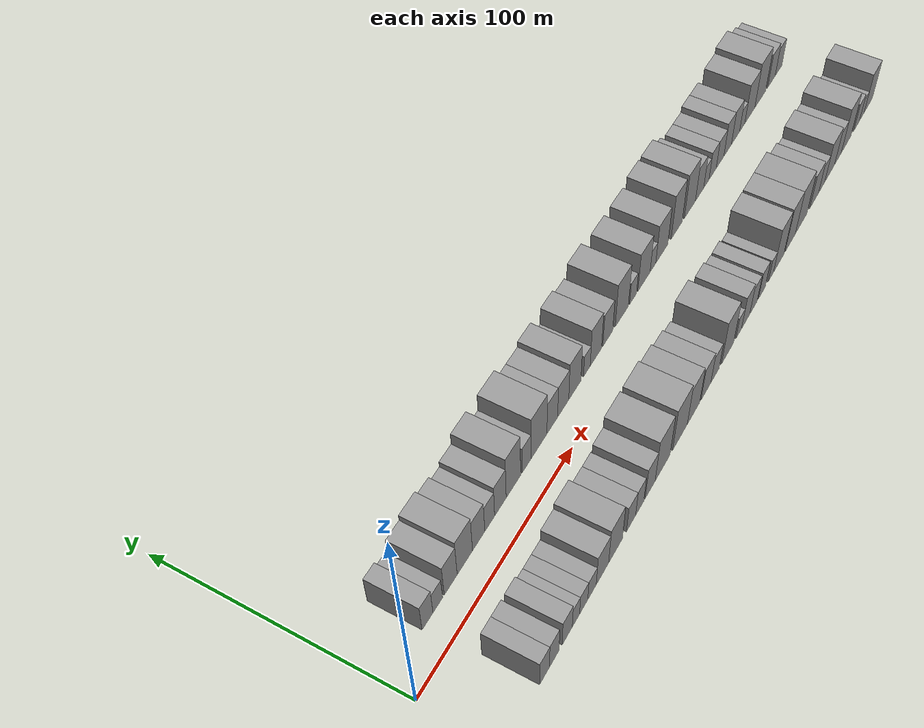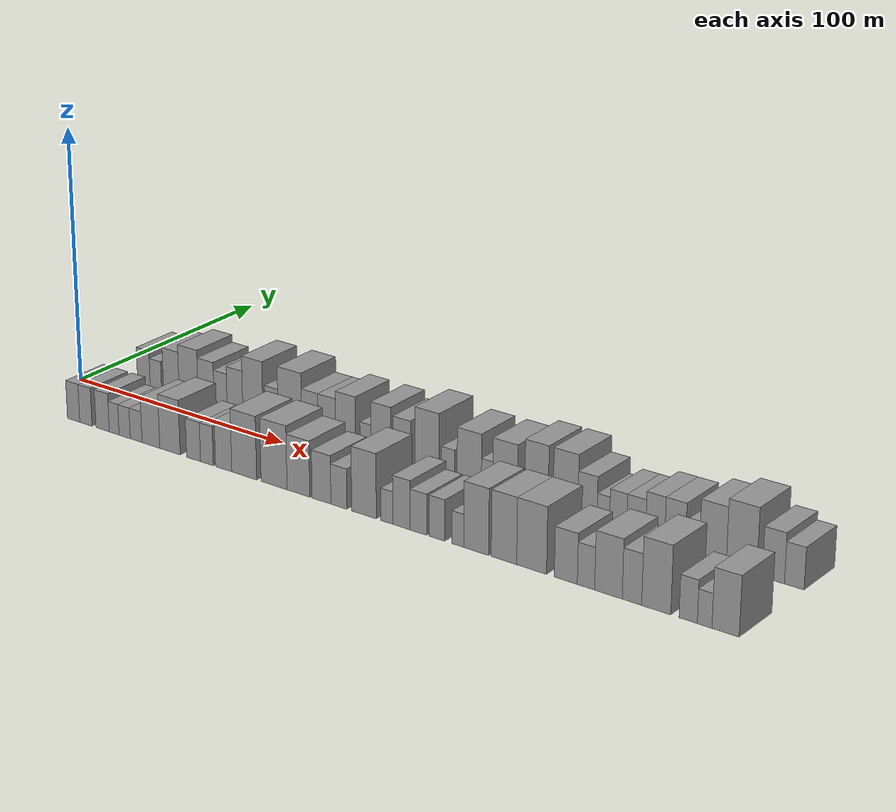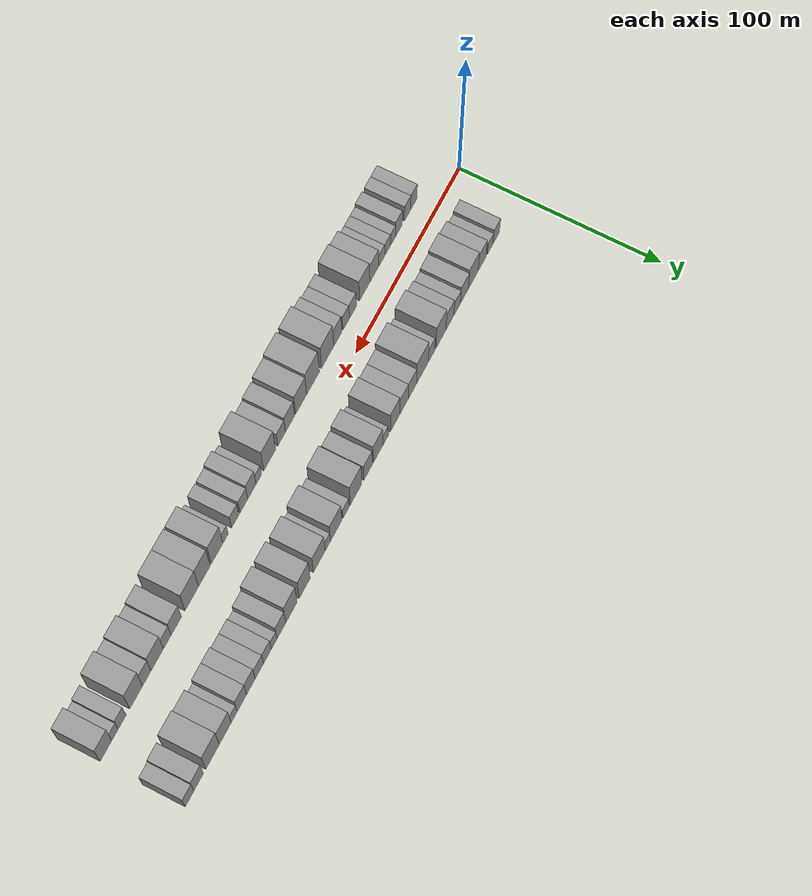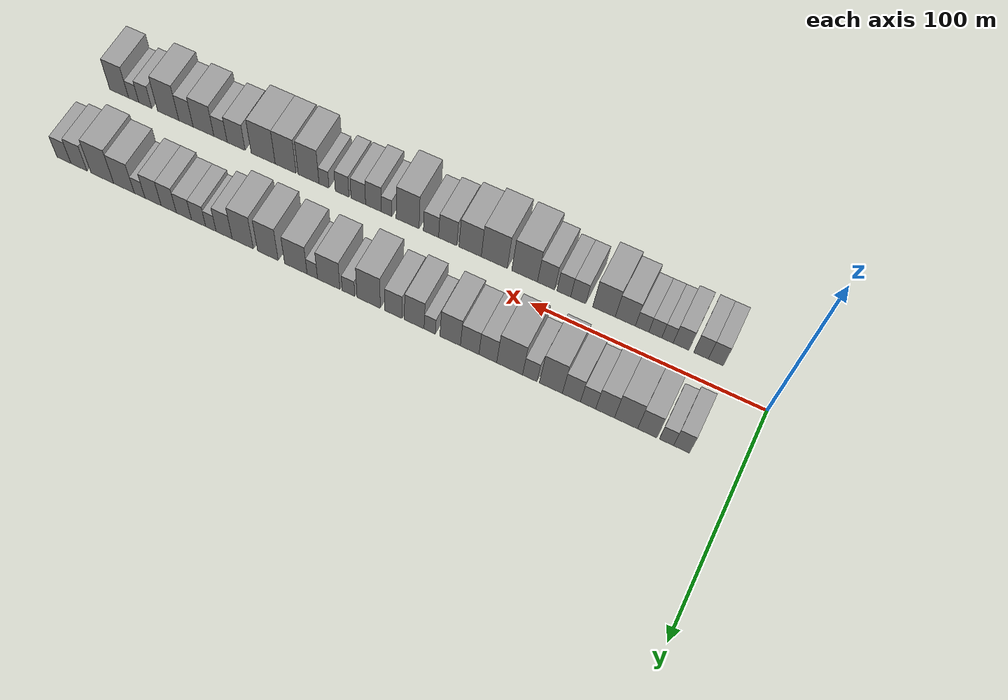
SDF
<sdf version="1.6">
 <world name="default">
  <scene>
   <sky><clouds><speed>12</speed></clouds></sky>
   <ambient>0.4 0.4 0.4 1</ambient>
   <background>0.7 0.7 0.7 1</background>
   <shadows>1</shadows>
  </scene>
  <gravity>0 0 -9.8066</gravity>
  <magnetic_field>6e-06 2.3e-05 -4.2e-05</magnetic_field>
  <physics default="0" name="default_physics" type="ode">
   <ode>
    <solver>
     <type>quick</type>
     <iters>10</iters>
     <sor>1.0</sor>
     <use_dynamic_moi_rescaling>0</use_dynamic_moi_rescaling>
    </solver>
    <constraints>
     <cfm>0</cfm>
     <erp>0.2</erp>
     <contact_max_correcting_vel>100</contact_max_correcting_vel>
     <contact_surface_layer>0.001</contact_surface_layer>
    </constraints>
   </ode>
   <max_step_size>0.004</max_step_size>
   <real_time_factor>1</real_time_factor>
   <real_time_update_rate>250</real_time_update_rate>
  </physics>
  <light name="sun" type="directional">
   <pose>0 0 10 0 0 0</pose>
   <diffuse>0.8 0.8 0.8 1</diffuse>
   <specular>0.2 0.2 0.2 1</specular>
   <attenuation>
    <range>1000</range>
    <constant>0.9</constant>
    <linear>0.01</linear>
    <quadratic>0.001</quadratic>
   </attenuation>
   <direction>-0.5 0.1 -0.9</direction>
  </light>
  <model name="building_1">
   <static>1</static>
   <pose>23.2118 20.0000 0 0.000000 0.000000 1.570796</pose>
   <link name="link">
    <pose>0 0 7.50 0 0 0</pose>
    <collision name="collision"><geometry><box><size>20.0000 6.4236 15.0000</size></box></geometry></collision>
    <visual name="visual">
     <cast_shadows>0</cast_shadows>
     <geometry><box><size>20.0000 6.4236 15.0000</size></box></geometry>
     <material>
      <script>
       <uri>model://grey_wall/materials/scripts</uri>
       <uri>model://grey_wall/materials/textures</uri>
       <name>vrc/grey_wall</name>
      </script>
     </material>
    </visual>
   </link>
  </model>
  <model name="building_2">
   <static>1</static>
   <pose>29.3151 20.0000 0 0.000000 0.000000 1.570796</pose>
   <link name="link">
    <pose>0 0 6.00 0 0 0</pose>
    <collision name="collision"><geometry><box><size>20.0000 5.7830 12.0000</size></box></geometry></collision>
    <visual name="visual">
     <cast_shadows>0</cast_shadows>
     <geometry><box><size>20.0000 5.7830 12.0000</size></box></geometry>
     <material>
      <script>
       <uri>model://grey_wall/materials/scripts</uri>
       <uri>model://grey_wall/materials/textures</uri>
       <name>vrc/grey_wall</name>
      </script>
     </material>
    </visual>
   </link>
  </model>
  <model name="building_3">
   <static>1</static>
   <pose>37.1715 20.0000 0 0.000000 0.000000 1.570796</pose>
   <link name="link">
    <pose>0 0 9.00 0 0 0</pose>
    <collision name="collision"><geometry><box><size>20.0000 7.9298 18.0000</size></box></geometry></collision>
    <visual name="visual">
     <cast_shadows>0</cast_shadows>
     <geometry><box><size>20.0000 7.9298 18.0000</size></box></geometry>
     <material>
      <script>
       <uri>model://grey_wall/materials/scripts</uri>
       <uri>model://grey_wall/materials/textures</uri>
       <name>vrc/grey_wall</name>
      </script>
     </material>
    </visual>
   </link>
  </model>
  <model name="building_4">
   <static>1</static>
   <pose>45.9178 20.0000 0 0.000000 0.000000 1.570796</pose>
   <link name="link">
    <pose>0 0 10.50 0 0 0</pose>
    <collision name="collision"><geometry><box><size>20.0000 9.5629 21.0000</size></box></geometry></collision>
    <visual name="visual">
     <cast_shadows>0</cast_shadows>
     <geometry><box><size>20.0000 9.5629 21.0000</size></box></geometry>
     <material>
      <script>
       <uri>model://grey_wall/materials/scripts</uri>
       <uri>model://grey_wall/materials/textures</uri>
       <name>vrc/grey_wall</name>
      </script>
     </material>
    </visual>
   </link>
  </model>
  <model name="building_5">
   <static>1</static>
   <pose>54.6174 20.0000 0 0.000000 0.000000 1.570796</pose>
   <link name="link">
    <pose>0 0 9.00 0 0 0</pose>
    <collision name="collision"><geometry><box><size>20.0000 7.8361 18.0000</size></box></geometry></collision>
    <visual name="visual">
     <cast_shadows>0</cast_shadows>
     <geometry><box><size>20.0000 7.8361 18.0000</size></box></geometry>
     <material>
      <script>
       <uri>model://grey_wall/materials/scripts</uri>
       <uri>model://grey_wall/materials/textures</uri>
       <name>vrc/grey_wall</name>
      </script>
     </material>
    </visual>
   </link>
  </model>
  <model name="building_6">
   <static>1</static>
   <pose>61.7313 20.0000 0 0.000000 0.000000 1.570796</pose>
   <link name="link">
    <pose>0 0 7.50 0 0 0</pose>
    <collision name="collision"><geometry><box><size>20.0000 6.3917 15.0000</size></box></geometry></collision>
    <visual name="visual">
     <cast_shadows>0</cast_shadows>
     <geometry><box><size>20.0000 6.3917 15.0000</size></box></geometry>
     <material>
      <script>
       <uri>model://grey_wall/materials/scripts</uri>
       <uri>model://grey_wall/materials/textures</uri>
       <name>vrc/grey_wall</name>
      </script>
     </material>
    </visual>
   </link>
  </model>
  <model name="building_7">
   <static>1</static>
   <pose>68.7411 20.0000 0 0.000000 0.000000 1.570796</pose>
   <link name="link">
    <pose>0 0 9.00 0 0 0</pose>
    <collision name="collision"><geometry><box><size>20.0000 7.6280 18.0000</size></box></geometry></collision>
    <visual name="visual">
     <cast_shadows>0</cast_shadows>
     <geometry><box><size>20.0000 7.6280 18.0000</size></box></geometry>
     <material>
      <script>
       <uri>model://grey_wall/materials/scripts</uri>
       <uri>model://grey_wall/materials/textures</uri>
       <name>vrc/grey_wall</name>
      </script>
     </material>
    </visual>
   </link>
  </model>
  <model name="building_8">
   <static>1</static>
   <pose>77.4207 20.0000 0 0.000000 0.000000 1.570796</pose>
   <link name="link">
    <pose>0 0 12.00 0 0 0</pose>
    <collision name="collision"><geometry><box><size>20.0000 9.7311 24.0000</size></box></geometry></collision>
    <visual name="visual">
     <cast_shadows>0</cast_shadows>
     <geometry><box><size>20.0000 9.7311 24.0000</size></box></geometry>
     <material>
      <script>
       <uri>model://grey_wall/materials/scripts</uri>
       <uri>model://grey_wall/materials/textures</uri>
       <name>vrc/grey_wall</name>
      </script>
     </material>
    </visual>
   </link>
  </model>
  <model name="building_9">
   <static>1</static>
   <pose>86.3764 20.0000 0 0.000000 0.000000 1.570796</pose>
   <link name="link">
    <pose>0 0 7.50 0 0 0</pose>
    <collision name="collision"><geometry><box><size>20.0000 6.1803 15.0000</size></box></geometry></collision>
    <visual name="visual">
     <cast_shadows>0</cast_shadows>
     <geometry><box><size>20.0000 6.1803 15.0000</size></box></geometry>
     <material>
      <script>
       <uri>model://grey_wall/materials/scripts</uri>
       <uri>model://grey_wall/materials/textures</uri>
       <name>vrc/grey_wall</name>
      </script>
     </material>
    </visual>
   </link>
  </model>
  <model name="building_10">
   <static>1</static>
   <pose>95.0358 20.0000 0 0.000000 0.000000 1.570796</pose>
   <link name="link">
    <pose>0 0 12.00 0 0 0</pose>
    <collision name="collision"><geometry><box><size>20.0000 11.1384 24.0000</size></box></geometry></collision>
    <visual name="visual">
     <cast_shadows>0</cast_shadows>
     <geometry><box><size>20.0000 11.1384 24.0000</size></box></geometry>
     <material>
      <script>
       <uri>model://grey_wall/materials/scripts</uri>
       <uri>model://grey_wall/materials/textures</uri>
       <name>vrc/grey_wall</name>
      </script>
     </material>
    </visual>
   </link>
  </model>
  <model name="building_11">
   <static>1</static>
   <pose>104.4666 20.0000 0 0.000000 0.000000 1.570796</pose>
   <link name="link">
    <pose>0 0 9.00 0 0 0</pose>
    <collision name="collision"><geometry><box><size>20.0000 7.7232 18.0000</size></box></geometry></collision>
    <visual name="visual">
     <cast_shadows>0</cast_shadows>
     <geometry><box><size>20.0000 7.7232 18.0000</size></box></geometry>
     <material>
      <script>
       <uri>model://grey_wall/materials/scripts</uri>
       <uri>model://grey_wall/materials/textures</uri>
       <name>vrc/grey_wall</name>
      </script>
     </material>
    </visual>
   </link>
  </model>
  <model name="building_12">
   <static>1</static>
   <pose>112.3706 20.0000 0 0.000000 0.000000 1.570796</pose>
   <link name="link">
    <pose>0 0 9.00 0 0 0</pose>
    <collision name="collision"><geometry><box><size>20.0000 8.0849 18.0000</size></box></geometry></collision>
    <visual name="visual">
     <cast_shadows>0</cast_shadows>
     <geometry><box><size>20.0000 8.0849 18.0000</size></box></geometry>
     <material>
      <script>
       <uri>model://grey_wall/materials/scripts</uri>
       <uri>model://grey_wall/materials/textures</uri>
       <name>vrc/grey_wall</name>
      </script>
     </material>
    </visual>
   </link>
  </model>
  <model name="building_13">
   <static>1</static>
   <pose>120.9339 20.0000 0 0.000000 0.000000 1.570796</pose>
   <link name="link">
    <pose>0 0 10.50 0 0 0</pose>
    <collision name="collision"><geometry><box><size>20.0000 9.0417 21.0000</size></box></geometry></collision>
    <visual name="visual">
     <cast_shadows>0</cast_shadows>
     <geometry><box><size>20.0000 9.0417 21.0000</size></box></geometry>
     <material>
      <script>
       <uri>model://grey_wall/materials/scripts</uri>
       <uri>model://grey_wall/materials/textures</uri>
       <name>vrc/grey_wall</name>
      </script>
     </material>
    </visual>
   </link>
  </model>
  <model name="building_14">
   <static>1</static>
   <pose>129.9616 20.0000 0 0.000000 0.000000 1.570796</pose>
   <link name="link">
    <pose>0 0 6.00 0 0 0</pose>
    <collision name="collision"><geometry><box><size>20.0000 5.0136 12.0000</size></box></geometry></collision>
    <visual name="visual">
     <cast_shadows>0</cast_shadows>
     <geometry><box><size>20.0000 5.0136 12.0000</size></box></geometry>
     <material>
      <script>
       <uri>model://grey_wall/materials/scripts</uri>
       <uri>model://grey_wall/materials/textures</uri>
       <name>vrc/grey_wall</name>
      </script>
     </material>
    </visual>
   </link>
  </model>
  <model name="building_15">
   <static>1</static>
   <pose>136.8514 20.0000 0 0.000000 0.000000 1.570796</pose>
   <link name="link">
    <pose>0 0 10.50 0 0 0</pose>
    <collision name="collision"><geometry><box><size>20.0000 8.7661 21.0000</size></box></geometry></collision>
    <visual name="visual">
     <cast_shadows>0</cast_shadows>
     <geometry><box><size>20.0000 8.7661 21.0000</size></box></geometry>
     <material>
      <script>
       <uri>model://grey_wall/materials/scripts</uri>
       <uri>model://grey_wall/materials/textures</uri>
       <name>vrc/grey_wall</name>
      </script>
     </material>
    </visual>
   </link>
  </model>
  <model name="building_16">
   <static>1</static>
   <pose>146.1345 20.0000 0 0.000000 0.000000 1.570796</pose>
   <link name="link">
    <pose>0 0 9.00 0 0 0</pose>
    <collision name="collision"><geometry><box><size>20.0000 7.8002 18.0000</size></box></geometry></collision>
    <visual name="visual">
     <cast_shadows>0</cast_shadows>
     <geometry><box><size>20.0000 7.8002 18.0000</size></box></geometry>
     <material>
      <script>
       <uri>model://grey_wall/materials/scripts</uri>
       <uri>model://grey_wall/materials/textures</uri>
       <name>vrc/grey_wall</name>
      </script>
     </material>
    </visual>
   </link>
  </model>
  <model name="building_17">
   <static>1</static>
   <pose>157.3124 20.0000 0 0.000000 0.000000 1.570796</pose>
   <link name="link">
    <pose>0 0 12.00 0 0 0</pose>
    <collision name="collision"><geometry><box><size>20.0000 10.5557 24.0000</size></box></geometry></collision>
    <visual name="visual">
     <cast_shadows>0</cast_shadows>
     <geometry><box><size>20.0000 10.5557 24.0000</size></box></geometry>
     <material>
      <script>
       <uri>model://grey_wall/materials/scripts</uri>
       <uri>model://grey_wall/materials/textures</uri>
       <name>vrc/grey_wall</name>
      </script>
     </material>
    </visual>
   </link>
  </model>
  <model name="building_18">
   <static>1</static>
   <pose>166.4663 20.0000 0 0.000000 0.000000 1.570796</pose>
   <link name="link">
    <pose>0 0 6.00 0 0 0</pose>
    <collision name="collision"><geometry><box><size>20.0000 5.7520 12.0000</size></box></geometry></collision>
    <visual name="visual">
     <cast_shadows>0</cast_shadows>
     <geometry><box><size>20.0000 5.7520 12.0000</size></box></geometry>
     <material>
      <script>
       <uri>model://grey_wall/materials/scripts</uri>
       <uri>model://grey_wall/materials/textures</uri>
       <name>vrc/grey_wall</name>
      </script>
     </material>
    </visual>
   </link>
  </model>
  <model name="building_19">
   <static>1</static>
   <pose>175.5122 20.0000 0 0.000000 0.000000 1.570796</pose>
   <link name="link">
    <pose>0 0 10.50 0 0 0</pose>
    <collision name="collision"><geometry><box><size>20.0000 10.3398 21.0000</size></box></geometry></collision>
    <visual name="visual">
     <cast_shadows>0</cast_shadows>
     <geometry><box><size>20.0000 10.3398 21.0000</size></box></geometry>
     <material>
      <script>
       <uri>model://grey_wall/materials/scripts</uri>
       <uri>model://grey_wall/materials/textures</uri>
       <name>vrc/grey_wall</name>
      </script>
     </material>
    </visual>
   </link>
  </model>
  <model name="building_20">
   <static>1</static>
   <pose>183.0930 20.0000 0 0.000000 0.000000 1.570796</pose>
   <link name="link">
    <pose>0 0 6.00 0 0 0</pose>
    <collision name="collision"><geometry><box><size>20.0000 4.8217 12.0000</size></box></geometry></collision>
    <visual name="visual">
     <cast_shadows>0</cast_shadows>
     <geometry><box><size>20.0000 4.8217 12.0000</size></box></geometry>
     <material>
      <script>
       <uri>model://grey_wall/materials/scripts</uri>
       <uri>model://grey_wall/materials/textures</uri>
       <name>vrc/grey_wall</name>
      </script>
     </material>
    </visual>
   </link>
  </model>
  <model name="building_21">
   <static>1</static>
   <pose>190.7196 20.0000 0 0.000000 0.000000 1.570796</pose>
   <link name="link">
    <pose>0 0 10.50 0 0 0</pose>
    <collision name="collision"><geometry><box><size>20.0000 10.4315 21.0000</size></box></geometry></collision>
    <visual name="visual">
     <cast_shadows>0</cast_shadows>
     <geometry><box><size>20.0000 10.4315 21.0000</size></box></geometry>
     <material>
      <script>
       <uri>model://grey_wall/materials/scripts</uri>
       <uri>model://grey_wall/materials/textures</uri>
       <name>vrc/grey_wall</name>
      </script>
     </material>
    </visual>
   </link>
  </model>
  <model name="building_22">
   <static>1</static>
   <pose>203.7811 20.0000 0 0.000000 0.000000 1.570796</pose>
   <link name="link">
    <pose>0 0 12.00 0 0 0</pose>
    <collision name="collision"><geometry><box><size>20.0000 9.6916 24.0000</size></box></geometry></collision>
    <visual name="visual">
     <cast_shadows>0</cast_shadows>
     <geometry><box><size>20.0000 9.6916 24.0000</size></box></geometry>
     <material>
      <script>
       <uri>model://grey_wall/materials/scripts</uri>
       <uri>model://grey_wall/materials/textures</uri>
       <name>vrc/grey_wall</name>
      </script>
     </material>
    </visual>
   </link>
  </model>
  <model name="building_23">
   <static>1</static>
   <pose>215.6560 20.0000 0 0.000000 0.000000 1.570796</pose>
   <link name="link">
    <pose>0 0 12.00 0 0 0</pose>
    <collision name="collision"><geometry><box><size>20.0000 10.0581 24.0000</size></box></geometry></collision>
    <visual name="visual">
     <cast_shadows>0</cast_shadows>
     <geometry><box><size>20.0000 10.0581 24.0000</size></box></geometry>
     <material>
      <script>
       <uri>model://grey_wall/materials/scripts</uri>
       <uri>model://grey_wall/materials/textures</uri>
       <name>vrc/grey_wall</name>
      </script>
     </material>
    </visual>
   </link>
  </model>
  <model name="building_24">
   <static>1</static>
   <pose>224.5340 20.0000 0 0.000000 0.000000 1.570796</pose>
   <link name="link">
    <pose>0 0 9.00 0 0 0</pose>
    <collision name="collision"><geometry><box><size>20.0000 7.6978 18.0000</size></box></geometry></collision>
    <visual name="visual">
     <cast_shadows>0</cast_shadows>
     <geometry><box><size>20.0000 7.6978 18.0000</size></box></geometry>
     <material>
      <script>
       <uri>model://grey_wall/materials/scripts</uri>
       <uri>model://grey_wall/materials/textures</uri>
       <name>vrc/grey_wall</name>
      </script>
     </material>
    </visual>
   </link>
  </model>
  <model name="building_25">
   <static>1</static>
   <pose>230.8734 20.0000 0 0.000000 0.000000 1.570796</pose>
   <link name="link">
    <pose>0 0 6.00 0 0 0</pose>
    <collision name="collision"><geometry><box><size>20.0000 4.9810 12.0000</size></box></geometry></collision>
    <visual name="visual">
     <cast_shadows>0</cast_shadows>
     <geometry><box><size>20.0000 4.9810 12.0000</size></box></geometry>
     <material>
      <script>
       <uri>model://grey_wall/materials/scripts</uri>
       <uri>model://grey_wall/materials/textures</uri>
       <name>vrc/grey_wall</name>
      </script>
     </material>
    </visual>
   </link>
  </model>
  <model name="building_26">
   <static>1</static>
   <pose>236.7851 20.0000 0 0.000000 0.000000 1.570796</pose>
   <link name="link">
    <pose>0 0 7.50 0 0 0</pose>
    <collision name="collision"><geometry><box><size>20.0000 6.8425 15.0000</size></box></geometry></collision>
    <visual name="visual">
     <cast_shadows>0</cast_shadows>
     <geometry><box><size>20.0000 6.8425 15.0000</size></box></geometry>
     <material>
      <script>
       <uri>model://grey_wall/materials/scripts</uri>
       <uri>model://grey_wall/materials/textures</uri>
       <name>vrc/grey_wall</name>
      </script>
     </material>
    </visual>
   </link>
  </model>
  <model name="building_27">
   <static>1</static>
   <pose>243.8890 20.0000 0 0.000000 0.000000 1.570796</pose>
   <link name="link">
    <pose>0 0 7.50 0 0 0</pose>
    <collision name="collision"><geometry><box><size>20.0000 7.3652 15.0000</size></box></geometry></collision>
    <visual name="visual">
     <cast_shadows>0</cast_shadows>
     <geometry><box><size>20.0000 7.3652 15.0000</size></box></geometry>
     <material>
      <script>
       <uri>model://grey_wall/materials/scripts</uri>
       <uri>model://grey_wall/materials/textures</uri>
       <name>vrc/grey_wall</name>
      </script>
     </material>
    </visual>
   </link>
  </model>
  <model name="building_28">
   <static>1</static>
   <pose>251.2797 20.0000 0 0.000000 0.000000 1.570796</pose>
   <link name="link">
    <pose>0 0 9.00 0 0 0</pose>
    <collision name="collision"><geometry><box><size>20.0000 7.4162 18.0000</size></box></geometry></collision>
    <visual name="visual">
     <cast_shadows>0</cast_shadows>
     <geometry><box><size>20.0000 7.4162 18.0000</size></box></geometry>
     <material>
      <script>
       <uri>model://grey_wall/materials/scripts</uri>
       <uri>model://grey_wall/materials/textures</uri>
       <name>vrc/grey_wall</name>
      </script>
     </material>
    </visual>
   </link>
  </model>
  <model name="building_29">
   <static>1</static>
   <pose>258.9793 20.0000 0 0.000000 0.000000 1.570796</pose>
   <link name="link">
    <pose>0 0 9.00 0 0 0</pose>
    <collision name="collision"><geometry><box><size>20.0000 7.9831 18.0000</size></box></geometry></collision>
    <visual name="visual">
     <cast_shadows>0</cast_shadows>
     <geometry><box><size>20.0000 7.9831 18.0000</size></box></geometry>
     <material>
      <script>
       <uri>model://grey_wall/materials/scripts</uri>
       <uri>model://grey_wall/materials/textures</uri>
       <name>vrc/grey_wall</name>
      </script>
     </material>
    </visual>
   </link>
  </model>
  <model name="building_30">
   <static>1</static>
   <pose>265.6253 20.0000 0 0.000000 0.000000 1.570796</pose>
   <link name="link">
    <pose>0 0 6.00 0 0 0</pose>
    <collision name="collision"><geometry><box><size>20.0000 5.3088 12.0000</size></box></geometry></collision>
    <visual name="visual">
     <cast_shadows>0</cast_shadows>
     <geometry><box><size>20.0000 5.3088 12.0000</size></box></geometry>
     <material>
      <script>
       <uri>model://grey_wall/materials/scripts</uri>
       <uri>model://grey_wall/materials/textures</uri>
       <name>vrc/grey_wall</name>
      </script>
     </material>
    </visual>
   </link>
  </model>
  <model name="building_31">
   <static>1</static>
   <pose>273.3707 20.0000 0 0.000000 0.000000 1.570796</pose>
   <link name="link">
    <pose>0 0 10.50 0 0 0</pose>
    <collision name="collision"><geometry><box><size>20.0000 10.1820 21.0000</size></box></geometry></collision>
    <visual name="visual">
     <cast_shadows>0</cast_shadows>
     <geometry><box><size>20.0000 10.1820 21.0000</size></box></geometry>
     <material>
      <script>
       <uri>model://grey_wall/materials/scripts</uri>
       <uri>model://grey_wall/materials/textures</uri>
       <name>vrc/grey_wall</name>
      </script>
     </material>
    </visual>
   </link>
  </model>
  <model name="building_32">
   <static>1</static>
   <pose>284.1615 20.0000 0 0.000000 0.000000 1.570796</pose>
   <link name="link">
    <pose>0 0 12.00 0 0 0</pose>
    <collision name="collision"><geometry><box><size>20.0000 11.3996 24.0000</size></box></geometry></collision>
    <visual name="visual">
     <cast_shadows>0</cast_shadows>
     <geometry><box><size>20.0000 11.3996 24.0000</size></box></geometry>
     <material>
      <script>
       <uri>model://grey_wall/materials/scripts</uri>
       <uri>model://grey_wall/materials/textures</uri>
       <name>vrc/grey_wall</name>
      </script>
     </material>
    </visual>
   </link>
  </model>
  <model name="building_33">
   <static>1</static>
   <pose>295.9186 20.0000 0 0.000000 0.000000 1.570796</pose>
   <link name="link">
    <pose>0 0 9.00 0 0 0</pose>
    <collision name="collision"><geometry><box><size>20.0000 8.1147 18.0000</size></box></geometry></collision>
    <visual name="visual">
     <cast_shadows>0</cast_shadows>
     <geometry><box><size>20.0000 8.1147 18.0000</size></box></geometry>
     <material>
      <script>
       <uri>model://grey_wall/materials/scripts</uri>
       <uri>model://grey_wall/materials/textures</uri>
       <name>vrc/grey_wall</name>
      </script>
     </material>
    </visual>
   </link>
  </model>
  <model name="building_34">
   <static>1</static>
   <pose>303.5557 20.0000 0 0.000000 0.000000 1.570796</pose>
   <link name="link">
    <pose>0 0 7.50 0 0 0</pose>
    <collision name="collision"><geometry><box><size>20.0000 7.1594 15.0000</size></box></geometry></collision>
    <visual name="visual">
     <cast_shadows>0</cast_shadows>
     <geometry><box><size>20.0000 7.1594 15.0000</size></box></geometry>
     <material>
      <script>
       <uri>model://grey_wall/materials/scripts</uri>
       <uri>model://grey_wall/materials/textures</uri>
       <name>vrc/grey_wall</name>
      </script>
     </material>
    </visual>
   </link>
  </model>
  <model name="building_35">
   <static>1</static>
   <pose>25.0960 -20.0000 0 0.000000 0.000000 1.570796</pose>
   <link name="link">
    <pose>0 0 7.50 0 0 0</pose>
    <collision name="collision"><geometry><box><size>20.0000 6.1920 15.0000</size></box></geometry></collision>
    <visual name="visual">
     <cast_shadows>0</cast_shadows>
     <geometry><box><size>20.0000 6.1920 15.0000</size></box></geometry>
     <material>
      <script>
       <uri>model://grey_wall/materials/scripts</uri>
       <uri>model://grey_wall/materials/textures</uri>
       <name>vrc/grey_wall</name>
      </script>
     </material>
    </visual>
   </link>
  </model>
  <model name="building_36">
   <static>1</static>
   <pose>31.2714 -20.0000 0 0.000000 0.000000 1.570796</pose>
   <link name="link">
    <pose>0 0 7.50 0 0 0</pose>
    <collision name="collision"><geometry><box><size>20.0000 6.1588 15.0000</size></box></geometry></collision>
    <visual name="visual">
     <cast_shadows>0</cast_shadows>
     <geometry><box><size>20.0000 6.1588 15.0000</size></box></geometry>
     <material>
      <script>
       <uri>model://grey_wall/materials/scripts</uri>
       <uri>model://grey_wall/materials/textures</uri>
       <name>vrc/grey_wall</name>
      </script>
     </material>
    </visual>
   </link>
  </model>
  <model name="building_37">
   <static>1</static>
   <pose>39.6636 -20.0000 0 0.000000 0.000000 1.570796</pose>
   <link name="link">
    <pose>0 0 7.50 0 0 0</pose>
    <collision name="collision"><geometry><box><size>20.0000 6.6255 15.0000</size></box></geometry></collision>
    <visual name="visual">
     <cast_shadows>0</cast_shadows>
     <geometry><box><size>20.0000 6.6255 15.0000</size></box></geometry>
     <material>
      <script>
       <uri>model://grey_wall/materials/scripts</uri>
       <uri>model://grey_wall/materials/textures</uri>
       <name>vrc/grey_wall</name>
      </script>
     </material>
    </visual>
   </link>
  </model>
  <model name="building_38">
   <static>1</static>
   <pose>45.3991 -20.0000 0 0.000000 0.000000 1.570796</pose>
   <link name="link">
    <pose>0 0 6.00 0 0 0</pose>
    <collision name="collision"><geometry><box><size>20.0000 4.8455 12.0000</size></box></geometry></collision>
    <visual name="visual">
     <cast_shadows>0</cast_shadows>
     <geometry><box><size>20.0000 4.8455 12.0000</size></box></geometry>
     <material>
      <script>
       <uri>model://grey_wall/materials/scripts</uri>
       <uri>model://grey_wall/materials/textures</uri>
       <name>vrc/grey_wall</name>
      </script>
     </material>
    </visual>
   </link>
  </model>
  <model name="building_39">
   <static>1</static>
   <pose>50.5723 -20.0000 0 0.000000 0.000000 1.570796</pose>
   <link name="link">
    <pose>0 0 6.00 0 0 0</pose>
    <collision name="collision"><geometry><box><size>20.0000 5.5010 12.0000</size></box></geometry></collision>
    <visual name="visual">
     <cast_shadows>0</cast_shadows>
     <geometry><box><size>20.0000 5.5010 12.0000</size></box></geometry>
     <material>
      <script>
       <uri>model://grey_wall/materials/scripts</uri>
       <uri>model://grey_wall/materials/textures</uri>
       <name>vrc/grey_wall</name>
      </script>
     </material>
    </visual>
   </link>
  </model>
  <model name="building_40">
   <static>1</static>
   <pose>56.1987 -20.0000 0 0.000000 0.000000 1.570796</pose>
   <link name="link">
    <pose>0 0 6.00 0 0 0</pose>
    <collision name="collision"><geometry><box><size>20.0000 5.7517 12.0000</size></box></geometry></collision>
    <visual name="visual">
     <cast_shadows>0</cast_shadows>
     <geometry><box><size>20.0000 5.7517 12.0000</size></box></geometry>
     <material>
      <script>
       <uri>model://grey_wall/materials/scripts</uri>
       <uri>model://grey_wall/materials/textures</uri>
       <name>vrc/grey_wall</name>
      </script>
     </material>
    </visual>
   </link>
  </model>
  <model name="building_41">
   <static>1</static>
   <pose>63.3860 -20.0000 0 0.000000 0.000000 1.570796</pose>
   <link name="link">
    <pose>0 0 9.00 0 0 0</pose>
    <collision name="collision"><geometry><box><size>20.0000 8.6229 18.0000</size></box></geometry></collision>
    <visual name="visual">
     <cast_shadows>0</cast_shadows>
     <geometry><box><size>20.0000 8.6229 18.0000</size></box></geometry>
     <material>
      <script>
       <uri>model://grey_wall/materials/scripts</uri>
       <uri>model://grey_wall/materials/textures</uri>
       <name>vrc/grey_wall</name>
      </script>
     </material>
    </visual>
   </link>
  </model>
  <model name="building_42">
   <static>1</static>
   <pose>72.5958 -20.0000 0 0.000000 0.000000 1.570796</pose>
   <link name="link">
    <pose>0 0 10.50 0 0 0</pose>
    <collision name="collision"><geometry><box><size>20.0000 9.7968 21.0000</size></box></geometry></collision>
    <visual name="visual">
     <cast_shadows>0</cast_shadows>
     <geometry><box><size>20.0000 9.7968 21.0000</size></box></geometry>
     <material>
      <script>
       <uri>model://grey_wall/materials/scripts</uri>
       <uri>model://grey_wall/materials/textures</uri>
       <name>vrc/grey_wall</name>
      </script>
     </material>
    </visual>
   </link>
  </model>
  <model name="building_43">
   <static>1</static>
   <pose>83.7972 -20.0000 0 0.000000 0.000000 1.570796</pose>
   <link name="link">
    <pose>0 0 7.50 0 0 0</pose>
    <collision name="collision"><geometry><box><size>20.0000 6.6060 15.0000</size></box></geometry></collision>
    <visual name="visual">
     <cast_shadows>0</cast_shadows>
     <geometry><box><size>20.0000 6.6060 15.0000</size></box></geometry>
     <material>
      <script>
       <uri>model://grey_wall/materials/scripts</uri>
       <uri>model://grey_wall/materials/textures</uri>
       <name>vrc/grey_wall</name>
      </script>
     </material>
    </visual>
   </link>
  </model>
  <model name="building_44">
   <static>1</static>
   <pose>90.1210 -20.0000 0 0.000000 0.000000 1.570796</pose>
   <link name="link">
    <pose>0 0 7.50 0 0 0</pose>
    <collision name="collision"><geometry><box><size>20.0000 6.0417 15.0000</size></box></geometry></collision>
    <visual name="visual">
     <cast_shadows>0</cast_shadows>
     <geometry><box><size>20.0000 6.0417 15.0000</size></box></geometry>
     <material>
      <script>
       <uri>model://grey_wall/materials/scripts</uri>
       <uri>model://grey_wall/materials/textures</uri>
       <name>vrc/grey_wall</name>
      </script>
     </material>
    </visual>
   </link>
  </model>
  <model name="building_45">
   <static>1</static>
   <pose>97.9325 -20.0000 0 0.000000 0.000000 1.570796</pose>
   <link name="link">
    <pose>0 0 9.00 0 0 0</pose>
    <collision name="collision"><geometry><box><size>20.0000 7.5813 18.0000</size></box></geometry></collision>
    <visual name="visual">
     <cast_shadows>0</cast_shadows>
     <geometry><box><size>20.0000 7.5813 18.0000</size></box></geometry>
     <material>
      <script>
       <uri>model://grey_wall/materials/scripts</uri>
       <uri>model://grey_wall/materials/textures</uri>
       <name>vrc/grey_wall</name>
      </script>
     </material>
    </visual>
   </link>
  </model>
  <model name="building_46">
   <static>1</static>
   <pose>107.4470 -20.0000 0 0.000000 0.000000 1.570796</pose>
   <link name="link">
    <pose>0 0 12.00 0 0 0</pose>
    <collision name="collision"><geometry><box><size>20.0000 11.4477 24.0000</size></box></geometry></collision>
    <visual name="visual">
     <cast_shadows>0</cast_shadows>
     <geometry><box><size>20.0000 11.4477 24.0000</size></box></geometry>
     <material>
      <script>
       <uri>model://grey_wall/materials/scripts</uri>
       <uri>model://grey_wall/materials/textures</uri>
       <name>vrc/grey_wall</name>
      </script>
     </material>
    </visual>
   </link>
  </model>
  <model name="building_47">
   <static>1</static>
   <pose>121.0273 -20.0000 0 0.000000 0.000000 1.570796</pose>
   <link name="link">
    <pose>0 0 12.00 0 0 0</pose>
    <collision name="collision"><geometry><box><size>20.0000 11.7128 24.0000</size></box></geometry></collision>
    <visual name="visual">
     <cast_shadows>0</cast_shadows>
     <geometry><box><size>20.0000 11.7128 24.0000</size></box></geometry>
     <material>
      <script>
       <uri>model://grey_wall/materials/scripts</uri>
       <uri>model://grey_wall/materials/textures</uri>
       <name>vrc/grey_wall</name>
      </script>
     </material>
    </visual>
   </link>
  </model>
  <model name="building_48">
   <static>1</static>
   <pose>131.9475 -20.0000 0 0.000000 0.000000 1.570796</pose>
   <link name="link">
    <pose>0 0 10.50 0 0 0</pose>
    <collision name="collision"><geometry><box><size>20.0000 10.1276 21.0000</size></box></geometry></collision>
    <visual name="visual">
     <cast_shadows>0</cast_shadows>
     <geometry><box><size>20.0000 10.1276 21.0000</size></box></geometry>
     <material>
      <script>
       <uri>model://grey_wall/materials/scripts</uri>
       <uri>model://grey_wall/materials/textures</uri>
       <name>vrc/grey_wall</name>
      </script>
     </material>
    </visual>
   </link>
  </model>
  <model name="building_49">
   <static>1</static>
   <pose>142.1603 -20.0000 0 0.000000 0.000000 1.570796</pose>
   <link name="link">
    <pose>0 0 9.00 0 0 0</pose>
    <collision name="collision"><geometry><box><size>20.0000 8.2980 18.0000</size></box></geometry></collision>
    <visual name="visual">
     <cast_shadows>0</cast_shadows>
     <geometry><box><size>20.0000 8.2980 18.0000</size></box></geometry>
     <material>
      <script>
       <uri>model://grey_wall/materials/scripts</uri>
       <uri>model://grey_wall/materials/textures</uri>
       <name>vrc/grey_wall</name>
      </script>
     </material>
    </visual>
   </link>
  </model>
  <model name="building_50">
   <static>1</static>
   <pose>149.8184 -20.0000 0 0.000000 0.000000 1.570796</pose>
   <link name="link">
    <pose>0 0 7.50 0 0 0</pose>
    <collision name="collision"><geometry><box><size>20.0000 7.0181 15.0000</size></box></geometry></collision>
    <visual name="visual">
     <cast_shadows>0</cast_shadows>
     <geometry><box><size>20.0000 7.0181 15.0000</size></box></geometry>
     <material>
      <script>
       <uri>model://grey_wall/materials/scripts</uri>
       <uri>model://grey_wall/materials/textures</uri>
       <name>vrc/grey_wall</name>
      </script>
     </material>
    </visual>
   </link>
  </model>
  <model name="building_51">
   <static>1</static>
   <pose>160.6385 -20.0000 0 0.000000 0.000000 1.570796</pose>
   <link name="link">
    <pose>0 0 12.00 0 0 0</pose>
    <collision name="collision"><geometry><box><size>20.0000 10.6221 24.0000</size></box></geometry></collision>
    <visual name="visual">
     <cast_shadows>0</cast_shadows>
     <geometry><box><size>20.0000 10.6221 24.0000</size></box></geometry>
     <material>
      <script>
       <uri>model://grey_wall/materials/scripts</uri>
       <uri>model://grey_wall/materials/textures</uri>
       <name>vrc/grey_wall</name>
      </script>
     </material>
    </visual>
   </link>
  </model>
  <model name="building_52">
   <static>1</static>
   <pose>170.4308 -20.0000 0 0.000000 0.000000 1.570796</pose>
   <link name="link">
    <pose>0 0 6.00 0 0 0</pose>
    <collision name="collision"><geometry><box><size>20.0000 4.9626 12.0000</size></box></geometry></collision>
    <visual name="visual">
     <cast_shadows>0</cast_shadows>
     <geometry><box><size>20.0000 4.9626 12.0000</size></box></geometry>
     <material>
      <script>
       <uri>model://grey_wall/materials/scripts</uri>
       <uri>model://grey_wall/materials/textures</uri>
       <name>vrc/grey_wall</name>
      </script>
     </material>
    </visual>
   </link>
  </model>
  <model name="building_53">
   <static>1</static>
   <pose>176.6036 -20.0000 0 0.000000 0.000000 1.570796</pose>
   <link name="link">
    <pose>0 0 9.00 0 0 0</pose>
    <collision name="collision"><geometry><box><size>20.0000 7.3831 18.0000</size></box></geometry></collision>
    <visual name="visual">
     <cast_shadows>0</cast_shadows>
     <geometry><box><size>20.0000 7.3831 18.0000</size></box></geometry>
     <material>
      <script>
       <uri>model://grey_wall/materials/scripts</uri>
       <uri>model://grey_wall/materials/textures</uri>
       <name>vrc/grey_wall</name>
      </script>
     </material>
    </visual>
   </link>
  </model>
  <model name="building_54">
   <static>1</static>
   <pose>183.7278 -20.0000 0 0.000000 0.000000 1.570796</pose>
   <link name="link">
    <pose>0 0 7.50 0 0 0</pose>
    <collision name="collision"><geometry><box><size>20.0000 6.8653 15.0000</size></box></geometry></collision>
    <visual name="visual">
     <cast_shadows>0</cast_shadows>
     <geometry><box><size>20.0000 6.8653 15.0000</size></box></geometry>
     <material>
      <script>
       <uri>model://grey_wall/materials/scripts</uri>
       <uri>model://grey_wall/materials/textures</uri>
       <name>vrc/grey_wall</name>
      </script>
     </material>
    </visual>
   </link>
  </model>
  <model name="building_55">
   <static>1</static>
   <pose>191.3890 -20.0000 0 0.000000 0.000000 1.570796</pose>
   <link name="link">
    <pose>0 0 7.50 0 0 0</pose>
    <collision name="collision"><geometry><box><size>20.0000 6.4571 15.0000</size></box></geometry></collision>
    <visual name="visual">
     <cast_shadows>0</cast_shadows>
     <geometry><box><size>20.0000 6.4571 15.0000</size></box></geometry>
     <material>
      <script>
       <uri>model://grey_wall/materials/scripts</uri>
       <uri>model://grey_wall/materials/textures</uri>
       <name>vrc/grey_wall</name>
      </script>
     </material>
    </visual>
   </link>
  </model>
  <model name="building_56">
   <static>1</static>
   <pose>200.0226 -20.0000 0 0.000000 0.000000 1.570796</pose>
   <link name="link">
    <pose>0 0 6.00 0 0 0</pose>
    <collision name="collision"><geometry><box><size>20.0000 4.8101 12.0000</size></box></geometry></collision>
    <visual name="visual">
     <cast_shadows>0</cast_shadows>
     <geometry><box><size>20.0000 4.8101 12.0000</size></box></geometry>
     <material>
      <script>
       <uri>model://grey_wall/materials/scripts</uri>
       <uri>model://grey_wall/materials/textures</uri>
       <name>vrc/grey_wall</name>
      </script>
     </material>
    </visual>
   </link>
  </model>
  <model name="building_57">
   <static>1</static>
   <pose>207.4470 -20.0000 0 0.000000 0.000000 1.570796</pose>
   <link name="link">
    <pose>0 0 12.00 0 0 0</pose>
    <collision name="collision"><geometry><box><size>20.0000 10.0388 24.0000</size></box></geometry></collision>
    <visual name="visual">
     <cast_shadows>0</cast_shadows>
     <geometry><box><size>20.0000 10.0388 24.0000</size></box></geometry>
     <material>
      <script>
       <uri>model://grey_wall/materials/scripts</uri>
       <uri>model://grey_wall/materials/textures</uri>
       <name>vrc/grey_wall</name>
      </script>
     </material>
    </visual>
   </link>
  </model>
  <model name="building_58">
   <static>1</static>
   <pose>218.5484 -20.0000 0 0.000000 0.000000 1.570796</pose>
   <link name="link">
    <pose>0 0 12.00 0 0 0</pose>
    <collision name="collision"><geometry><box><size>20.0000 10.1640 24.0000</size></box></geometry></collision>
    <visual name="visual">
     <cast_shadows>0</cast_shadows>
     <geometry><box><size>20.0000 10.1640 24.0000</size></box></geometry>
     <material>
      <script>
       <uri>model://grey_wall/materials/scripts</uri>
       <uri>model://grey_wall/materials/textures</uri>
       <name>vrc/grey_wall</name>
      </script>
     </material>
    </visual>
   </link>
  </model>
  <model name="building_59">
   <static>1</static>
   <pose>229.4949 -20.0000 0 0.000000 0.000000 1.570796</pose>
   <link name="link">
    <pose>0 0 12.00 0 0 0</pose>
    <collision name="collision"><geometry><box><size>20.0000 11.7292 24.0000</size></box></geometry></collision>
    <visual name="visual">
     <cast_shadows>0</cast_shadows>
     <geometry><box><size>20.0000 11.7292 24.0000</size></box></geometry>
     <material>
      <script>
       <uri>model://grey_wall/materials/scripts</uri>
       <uri>model://grey_wall/materials/textures</uri>
       <name>vrc/grey_wall</name>
      </script>
     </material>
    </visual>
   </link>
  </model>
  <model name="building_60">
   <static>1</static>
   <pose>242.7933 -20.0000 0 0.000000 0.000000 1.570796</pose>
   <link name="link">
    <pose>0 0 9.00 0 0 0</pose>
    <collision name="collision"><geometry><box><size>20.0000 8.8675 18.0000</size></box></geometry></collision>
    <visual name="visual">
     <cast_shadows>0</cast_shadows>
     <geometry><box><size>20.0000 8.8675 18.0000</size></box></geometry>
     <material>
      <script>
       <uri>model://grey_wall/materials/scripts</uri>
       <uri>model://grey_wall/materials/textures</uri>
       <name>vrc/grey_wall</name>
      </script>
     </material>
    </visual>
   </link>
  </model>
  <model name="building_61">
   <static>1</static>
   <pose>250.5465 -20.0000 0 0.000000 0.000000 1.570796</pose>
   <link name="link">
    <pose>0 0 7.50 0 0 0</pose>
    <collision name="collision"><geometry><box><size>20.0000 6.6389 15.0000</size></box></geometry></collision>
    <visual name="visual">
     <cast_shadows>0</cast_shadows>
     <geometry><box><size>20.0000 6.6389 15.0000</size></box></geometry>
     <material>
      <script>
       <uri>model://grey_wall/materials/scripts</uri>
       <uri>model://grey_wall/materials/textures</uri>
       <name>vrc/grey_wall</name>
      </script>
     </material>
    </visual>
   </link>
  </model>
  <model name="building_62">
   <static>1</static>
   <pose>259.0636 -20.0000 0 0.000000 0.000000 1.570796</pose>
   <link name="link">
    <pose>0 0 10.50 0 0 0</pose>
    <collision name="collision"><geometry><box><size>20.0000 10.3953 21.0000</size></box></geometry></collision>
    <visual name="visual">
     <cast_shadows>0</cast_shadows>
     <geometry><box><size>20.0000 10.3953 21.0000</size></box></geometry>
     <material>
      <script>
       <uri>model://grey_wall/materials/scripts</uri>
       <uri>model://grey_wall/materials/textures</uri>
       <name>vrc/grey_wall</name>
      </script>
     </material>
    </visual>
   </link>
  </model>
  <model name="building_63">
   <static>1</static>
   <pose>267.8921 -20.0000 0 0.000000 0.000000 1.570796</pose>
   <link name="link">
    <pose>0 0 9.00 0 0 0</pose>
    <collision name="collision"><geometry><box><size>20.0000 7.2618 18.0000</size></box></geometry></collision>
    <visual name="visual">
     <cast_shadows>0</cast_shadows>
     <geometry><box><size>20.0000 7.2618 18.0000</size></box></geometry>
     <material>
      <script>
       <uri>model://grey_wall/materials/scripts</uri>
       <uri>model://grey_wall/materials/textures</uri>
       <name>vrc/grey_wall</name>
      </script>
     </material>
    </visual>
   </link>
  </model>
  <model name="building_64">
   <static>1</static>
   <pose>276.8897 -20.0000 0 0.000000 0.000000 1.570796</pose>
   <link name="link">
    <pose>0 0 12.00 0 0 0</pose>
    <collision name="collision"><geometry><box><size>20.0000 10.7334 24.0000</size></box></geometry></collision>
    <visual name="visual">
     <cast_shadows>0</cast_shadows>
     <geometry><box><size>20.0000 10.7334 24.0000</size></box></geometry>
     <material>
      <script>
       <uri>model://grey_wall/materials/scripts</uri>
       <uri>model://grey_wall/materials/textures</uri>
       <name>vrc/grey_wall</name>
      </script>
     </material>
    </visual>
   </link>
  </model>
  <model name="building_65">
   <static>1</static>
   <pose>288.5619 -20.0000 0 0.000000 0.000000 1.570796</pose>
   <link name="link">
    <pose>0 0 7.50 0 0 0</pose>
    <collision name="collision"><geometry><box><size>20.0000 6.6109 15.0000</size></box></geometry></collision>
    <visual name="visual">
     <cast_shadows>0</cast_shadows>
     <geometry><box><size>20.0000 6.6109 15.0000</size></box></geometry>
     <material>
      <script>
       <uri>model://grey_wall/materials/scripts</uri>
       <uri>model://grey_wall/materials/textures</uri>
       <name>vrc/grey_wall</name>
      </script>
     </material>
    </visual>
   </link>
  </model>
  <model name="building_66">
   <static>1</static>
   <pose>294.5026 -20.0000 0 0.000000 0.000000 1.570796</pose>
   <link name="link">
    <pose>0 0 6.00 0 0 0</pose>
    <collision name="collision"><geometry><box><size>20.0000 5.2706 12.0000</size></box></geometry></collision>
    <visual name="visual">
     <cast_shadows>0</cast_shadows>
     <geometry><box><size>20.0000 5.2706 12.0000</size></box></geometry>
     <material>
      <script>
       <uri>model://grey_wall/materials/scripts</uri>
       <uri>model://grey_wall/materials/textures</uri>
       <name>vrc/grey_wall</name>
      </script>
     </material>
    </visual>
   </link>
  </model>
  <model name="building_67">
   <static>1</static>
   <pose>301.9873 -20.0000 0 0.000000 0.000000 1.570796</pose>
   <link name="link">
    <pose>0 0 10.50 0 0 0</pose>
    <collision name="collision"><geometry><box><size>20.0000 9.6988 21.0000</size></box></geometry></collision>
    <visual name="visual">
     <cast_shadows>0</cast_shadows>
     <geometry><box><size>20.0000 9.6988 21.0000</size></box></geometry>
     <material>
      <script>
       <uri>model://grey_wall/materials/scripts</uri>
       <uri>model://grey_wall/materials/textures</uri>
       <name>vrc/grey_wall</name>
      </script>
     </material>
    </visual>
   </link>
  </model>
 </world>
</sdf>
